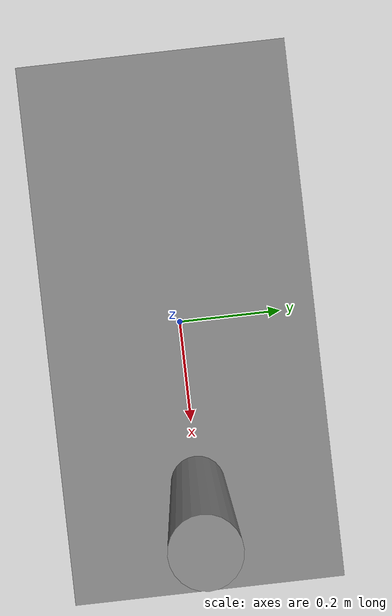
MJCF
<mujoco>
    <compiler/>
    <option gravity="0 0 -9.81"/>
    <asset/>
    <worldbody>
        <body name="base_link">
            <inertial diaginertia="0.01 0.01 0.01" mass="1" pos="0 0 0"/>
            <geom size="0.5 0.25 0.15" type="box"/>
            <body name="arm_link" pos="0.3 0 0.15">
                <inertial diaginertia="0.01 0.01 0.01" mass="0.5" pos="0 0 0.3"/>
                <geom pos="0 0 0.3" size="0.05 0.3 0.001" type="cylinder"/>
                <joint axis="0 1 0" name="arm_joint" range="-1.57 1.57" type="hinge"/>
            </body>
        </body>
    </worldbody>
    <actuator/>
    <sensor/>
    <contact/>
    <equality/>
    <tendon/>
</mujoco>
